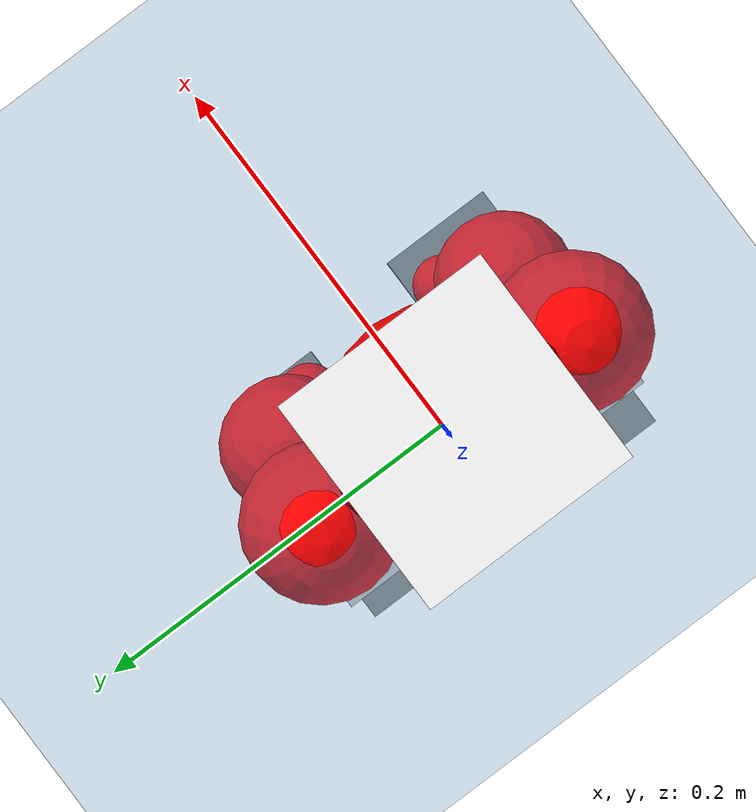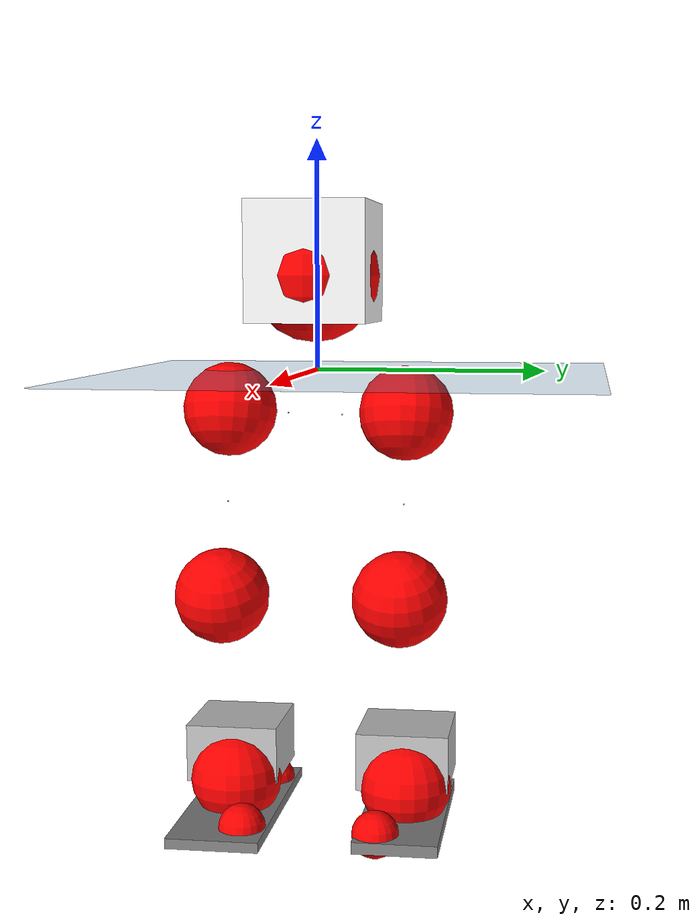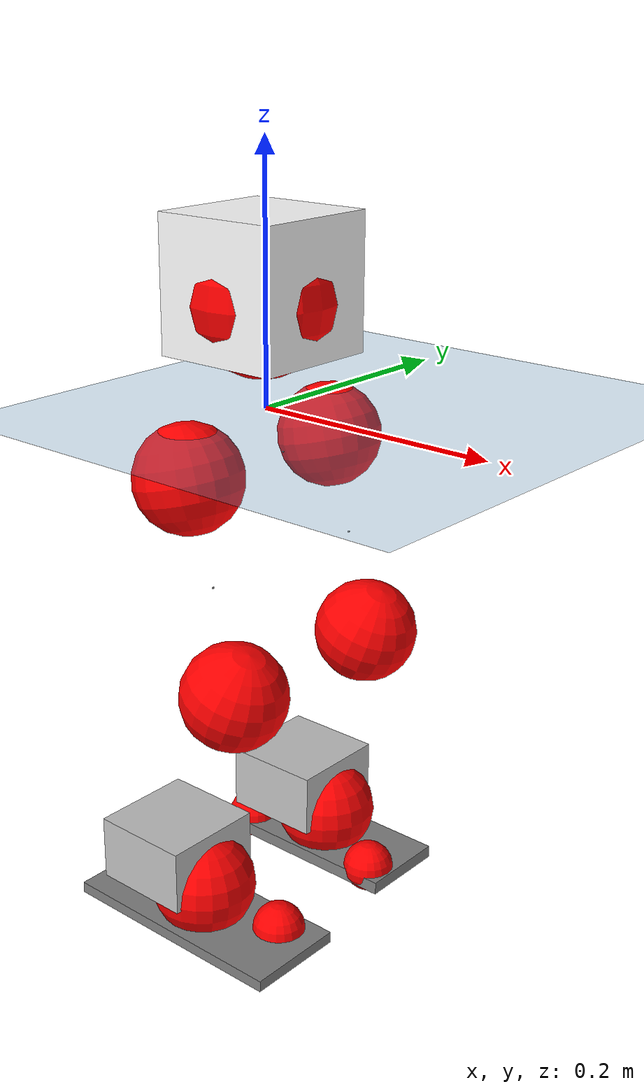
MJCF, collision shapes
<mujoco model="pi_12dof_release_v1">
  <compiler angle="radian" assetdir="assets" balanceinertia="true" inertiafromgeom="false"/>

  <option timestep="0.005" density="1.2" viscosity="2e-05"/>

  <size nkey="1"/>

  <visual>
    <quality shadowsize="8192"/>
    <map shadowclip="0.5"/>
  </visual>

  <default>
    <default class="/">
      <joint armature="0.01" damping="0.01" frictionloss="0.01"/>
      <geom contype="0" conaffinity="0" group="1" solref="-1000 -80"/>
      <site size="0.01 0.005 0.005" group="5"/>
      <general forcelimited="true" biastype="affine" gainprm="20" biasprm="0 -20 -0.5"/>
      <default class="foot">
        <geom size="0.0845 0.036 0.005" type="box" condim="6" group="4" priority="1" friction="0.9 0.2 0.2" solimp="0.015 1 0.005"/>
      </default>
      <default class="reward_collision_sphere">
        <geom group="5" rgba="1 0 0 1"/>
      </default>
    </default>
  </default>

  <asset>
    <texture type="skybox" colorspace="auto" name="//unnamed_texture_0" builtin="gradient" rgb1="0.95 0.95 0.95" rgb2="0.95 0.95 0.95" width="100" height="600"/>
    <texture type="2d" colorspace="auto" name="texplane" builtin="checker" rgb1="0.345 0.575 0.748" rgb2="0.345 0.575 0.748" markrgb="1 1 1" width="512" height="512"/>
    <material name="MatPlane" class="/" texture="texplane" texuniform="true" texrepeat="2 2" specular="0.9"/>
    <mesh name="baselink_1" class="/" file="baselink_1.STL"/>
    <mesh name="r_hip_pitch_link" class="/" file="r_hip_pitch_link.STL"/>
    <mesh name="r_hip_roll_link" class="/" file="r_hip_roll_link.STL"/>
    <mesh name="r_thigh_link" class="/" file="r_thigh_link.STL"/>
    <mesh name="r_calf_link" class="/" file="r_calf_link.STL"/>
    <mesh name="r_ankle_pitch_link" class="/" file="r_ankle_pitch_link.STL"/>
    <mesh name="r_ankle_roll_link" class="/" file="r_ankle_roll_link.STL"/>
    <mesh name="l_hip_pitch_link" class="/" file="l_hip_pitch_link.STL"/>
    <mesh name="l_hip_roll_link" class="/" file="l_hip_roll_link.STL"/>
    <mesh name="l_thigh_link" class="/" file="l_thigh_link.STL"/>
    <mesh name="l_calf_link" class="/" file="l_calf_link.STL"/>
    <mesh name="l_ankle_pitch_link" class="/" file="l_ankle_pitch_link.STL"/>
    <mesh name="l_ankle_roll_link" class="/" file="l_ankle_roll_link.STL"/>
  </asset>

  <worldbody>
    <geom name="floor" class="/" size="100 100 0.125" type="plane" group="0" material="MatPlane"/>
    <light name="toplight_shadow" class="/" pos="0 0 5" dir="0.0990148 0.0990148 -0.990148" type="directional" ambient="0.04 0.04 0.04" diffuse="0.55 0.55 0.55" specular="0.12 0.12 0.12"/>
    <light name="toplight_fill" class="/" pos="0 0 5" dir="0.0990148 0.0990148 -0.990148" type="directional" castshadow="false" ambient="0.04 0.04 0.04" diffuse="0.3 0.3 0.3" specular="0.08 0.08 0.08"/>
    <body name="trunk" pos="-0.000471007 -0.00254574 -0.00239209" quat="1 -4.57229e-05 -0.00097924 -1.13657e-05">
      <inertial pos="0.00230384 -0.00210042 0.0493504" quat="0.702485 0.0154489 0.0108763 0.711448" mass="2.56811" diaginertia="0.00840248 0.0076998 0.0108901"/>
      <joint name="//unnamed_joint_0" type="free"/>
      <geom name="//unnamed_geom_1" class="/" type="mesh" density="0" rgba="1 1 1 1" mesh="baselink_1"/>
      <geom name="//unnamed_geom_2" class="/" size="0.0524999 0.0524999 0.0524999" pos="0 0 0.0965427" type="box" rgba="1 1 1 1"/>
      <geom name="//unnamed_geom_3" class="reward_collision_sphere" size="0.0577499" pos="0 0 0.0844749"/>
      <site name="imu" class="/" pos="-0.00385223 0.01114 -0.00733441" size="0.0105"/>
      <camera name="track" class="/" pos="0 -1.94057 0" quat="0.707107 0.707107 0 0" mode="trackcom"/>
      <camera name="ego_camera" class="/" pos="0.0729692 0 0.217221" quat="-0.5 -0.5 0.5 0.5"/>
      <body name="r_hip_pitch_link" pos="-0.00241526 -0.0250696 -0.0365842" quat="0.99221 -6.05005e-05 -0.124574 -0.000257121">
        <inertial pos="0.00110778 -0.0570554 -0.00282891" quat="-0.0181181 0.707964 -0.0323378 0.705276" mass="0.438068" diaginertia="9.63127e-05 8.49381e-05 0.000224112"/>
        <joint name="r_hip_pitch_joint" class="/" pos="0 0 0" axis="-0.00923993 -0.99993 -0.0074064" stiffness="0.00602756" range="-1.75413 1.28711" armature="0.0103453" damping="0.00637062" frictionloss="0.0118104"/>
        <geom name="//unnamed_geom_4" class="/" type="mesh" density="0" rgba="0.75294 0.75294 0.75294 1" mesh="r_hip_pitch_link"/>
        <geom name="//unnamed_geom_5" class="/" size="0.000524999 0.000524999 0.000524999" type="box" rgba="0.75294 0.75294 0.75294 1"/>
        <body name="r_hip_roll_link" pos="0.000922268 -0.0528778 0.00261067" quat="1 4.44984e-05 3.29142e-05 -8.36157e-06">
          <inertial pos="-0.00135586 -0.000992087 -0.0721445" quat="0.708109 -0.0750988 -0.0825315 0.69723" mass="0.444456" diaginertia="0.000295465 0.000244308 0.000320252"/>
          <joint name="r_hip_roll_joint" class="/" pos="0 0 0" axis="-1 0.000887951 -0.000402711" stiffness="0.0092379" range="-0.157471 0.552536" armature="0.0098484" damping="0" frictionloss="0.0100438"/>
          <geom name="//unnamed_geom_6" class="/" type="mesh" density="0" rgba="0.75294 0.75294 0.75294 1" mesh="r_hip_roll_link"/>
          <geom name="//unnamed_geom_7" class="/" size="0.000524999 0.000524999 0.000524999" type="box" rgba="0.75294 0.75294 0.75294 1"/>
          <geom name="//unnamed_geom_8" class="reward_collision_sphere" size="0.0419999"/>
          <body name="r_thigh_link" pos="9.00086e-05 0.00190897 -0.0829793" quat="0.999999 0.000806523 0.00104241 -3.02405e-05">
            <inertial pos="0.00290719 0.00349306 -0.0596187" quat="0.740275 0.672283 0.000679971 -0.00526036" mass="0.133299" diaginertia="0.000106499 8.44126e-05 0.000143602"/>
            <joint name="r_thigh_joint" class="/" pos="0 0 0" axis="-0.00774656 0.00575384 -0.999953" stiffness="0.00429065" range="-0.300437 0.650378" armature="0.00964067" damping="0.0189023" frictionloss="0.0110307"/>
            <geom name="//unnamed_geom_9" class="/" type="mesh" density="0" rgba="0.75294 0.75294 0.75294 1" mesh="r_thigh_link"/>
            <geom name="//unnamed_geom_10" class="/" size="0.000524999 0.000524999 0.000524999" type="box" rgba="0.75294 0.75294 0.75294 1"/>
            <body name="r_calf_link" pos="0.000373398 -0.00143731 -0.0842825" quat="0.947616 0.00132252 0.31941 0.000365414">
              <inertial pos="0.00178246 0.000840384 -0.0843606" quat="0.999959 -0.00765048 -0.00180967 0.00453157" mass="0.960334" diaginertia="0.00317032 0.00307503 0.000445282"/>
              <joint name="r_calf_joint" class="/" pos="0 0 0" axis="0.00164286 -0.999984 -0.00539642" stiffness="0.00141372" range="-1.6319 0.617651" armature="0.0103357" damping="0.00951428" frictionloss="0.0104024"/>
              <geom name="//unnamed_geom_11" class="/" type="mesh" density="0" rgba="0.75294 0.75294 0.75294 1" mesh="r_calf_link"/>
              <geom name="//unnamed_geom_12" class="/" size="0.000524999 0.000524999 0.000524999" type="box" rgba="0.75294 0.75294 0.75294 1"/>
              <geom name="//unnamed_geom_13" class="reward_collision_sphere" size="0.0419999"/>
              <body name="r_ankle_pitch_link" pos="0.000151186 -0.000572447 -0.167596" quat="0.9801 -0.00014536 -0.198504 -0.000294621">
                <inertial pos="0.00216675 0.0036548 -0.00190794" quat="0.00350035 0.707167 -0.00263745 0.707033" mass="0.198608" diaginertia="0.000261152 0.000179421 0.000290635"/>
                <joint name="r_ankle_pitch_joint" class="/" pos="0 0 0" axis="-6.65186e-05 -1 9.20081e-05" range="-1.3371 0.544126" armature="0.010565" damping="0.0145012" frictionloss="0.00912698"/>
                <geom name="//unnamed_geom_14" class="/" type="mesh" density="0" rgba="0.75294 0.75294 0.75294 1" mesh="r_ankle_pitch_link"/>
                <geom name="//unnamed_geom_15" class="/" size="0.0409499 0.0419999 0.0262499" type="box" rgba="0.75294 0.75294 0.75294 1"/>
                <body name="r_ankle_roll_link" pos="0.0761332 0.0015361 -0.000208332" quat="1 -2.85883e-06 -7.21347e-05 -1.70905e-05">
                  <inertial pos="-0.0201486 0.000109809 -0.0190479" quat="0.559848 0.43149 0.434505 0.558204" mass="0.625186" diaginertia="0.00103023 0.000879784 0.000732855"/>
                  <joint name="r_ankle_roll_joint" class="/" pos="0 0 0" axis="-0.999987 0.00448396 0.00246219" range="-0.132649 0.115255" armature="0.010632" damping="0" frictionloss="0.0102911"/>
                  <geom name="//unnamed_geom_16" class="/" type="mesh" density="0" rgba="0.75294 0.75294 0.75294 1" mesh="r_ankle_roll_link"/>
                  <geom name="//unnamed_geom_17" class="/" type="mesh" rgba="0.75294 0.75294 0.75294 1" mesh="r_ankle_roll_link"/>
                  <geom name="right_foot" class="foot" size="0.0991623 0.0412725 0.00461736" pos="-0.0496191 0 -0.0530985"/>
                  <geom name="//unnamed_geom_19" class="reward_collision_sphere" size="0.0419999" pos="-0.0486462 0 -0.0241357"/>
                  <geom name="//unnamed_geom_20" class="reward_collision_sphere" size="0.021" pos="0.0145938 0.0194057 -0.0482714"/>
                  <geom name="//unnamed_geom_21" class="reward_collision_sphere" size="0.021" pos="-0.116751 0.0194057 -0.0482714"/>
                  <site name="right_foot" class="foot" pos="-0.0496191 0 -0.0530985" size="0.0105"/>
                </body>
              </body>
            </body>
          </body>
        </body>
      </body>
      <body name="l_hip_pitch_link" pos="-0.00123747 0.0240822 -0.0373581" quat="0.992158 3.23246e-05 -0.12499 0.000442814">
        <inertial pos="0.00128066 0.0510463 -0.000998725" quat="-0.0385281 0.706175 0.0301487 0.706345" mass="0.450519" diaginertia="0.000110748 9.19454e-05 0.000250425"/>
        <joint name="l_hip_pitch_joint" class="/" pos="0 0 0" axis="0.00232378 0.999991 -0.00357533" range="-1.19112 1.73342" armature="0.0116734" damping="0" frictionloss="0.0118348"/>
        <geom name="//unnamed_geom_22" class="/" type="mesh" density="0" rgba="0.75294 0.75294 0.75294 1" mesh="l_hip_pitch_link"/>
        <geom name="//unnamed_geom_23" class="/" size="0.000524999 0.000524999 0.000524999" type="box" rgba="0.75294 0.75294 0.75294 1"/>
        <body name="l_hip_roll_link" pos="-0.00109703 0.0569949 0.0020485" quat="1 9.91989e-05 0.000392592 -6.74006e-05">
          <inertial pos="-0.00137699 0.000258691 -0.0744676" quat="0.694893 -0.0717774 -0.0786653 0.711185" mass="0.439163" diaginertia="0.000295759 0.000231983 0.00033663"/>
          <joint name="l_hip_roll_joint" class="/" pos="0 0 0" axis="-0.999934 0.00995624 0.0057423" range="-0.536661 0.0674796" armature="0.0117044" damping="0.0110553" frictionloss="0.0119511"/>
          <geom name="//unnamed_geom_24" class="/" type="mesh" density="0" rgba="0.75294 0.75294 0.75294 1" mesh="l_hip_roll_link"/>
          <geom name="//unnamed_geom_25" class="/" size="0.000524999 0.000524999 0.000524999" type="box" rgba="0.75294 0.75294 0.75294 1"/>
          <geom name="//unnamed_geom_26" class="reward_collision_sphere" size="0.0419999"/>
          <body name="l_thigh_link" pos="0.00100387 0.000759147 -0.0811449" quat="1 9.80543e-05 0.000283181 0.000499436">
            <inertial pos="0.000399752 -0.00136494 -0.0545251" quat="0.674833 0.73797 -0.000642572 -0.00115993" mass="0.131555" diaginertia="0.000108618 8.07016e-05 0.000150493"/>
            <joint name="l_thigh_joint" class="/" pos="0 0 0" axis="0.00157237 0.00216815 -0.999996" range="-0.59997 0.301828" armature="0.00887232" damping="0.00889266" frictionloss="0.0106462"/>
            <geom name="//unnamed_geom_27" class="/" type="mesh" density="0" rgba="0.75294 0.75294 0.75294 1" mesh="l_thigh_link"/>
            <geom name="//unnamed_geom_28" class="/" size="0.000524999 0.000524999 0.000524999" type="box" rgba="0.75294 0.75294 0.75294 1"/>
            <body name="l_calf_link" pos="-0.000386264 -0.00121945 -0.0831928" quat="0.947501 0.000883652 0.319752 0.000771141">
              <inertial pos="0.000407563 0.00553621 -0.0842058" quat="0.999992 0.00393491 0.000593598 -0.00072772" mass="0.945162" diaginertia="0.00319804 0.00313303 0.000435954"/>
              <joint name="l_calf_joint" class="/" pos="0 0 0" axis="0.000252689 0.999999 -0.00150526" range="-0.656077 1.6481" armature="0.0104583" damping="0.0136827" frictionloss="0.0106782"/>
              <geom name="//unnamed_geom_29" class="/" type="mesh" density="0" rgba="0.75294 0.75294 0.75294 1" mesh="l_calf_link"/>
              <geom name="//unnamed_geom_30" class="/" size="0.000524999 0.000524999 0.000524999" type="box" rgba="0.75294 0.75294 0.75294 1"/>
              <geom name="//unnamed_geom_31" class="reward_collision_sphere" size="0.0419999"/>
              <body name="l_ankle_pitch_link" pos="0.000215185 -0.00146357 -0.171117" quat="0.980287 -0.000182037 -0.197577 0.000744416">
                <inertial pos="0.00492564 -0.0036451 -0.000793125" quat="-0.00207326 0.706845 0.00425916 0.707352" mass="0.191077" diaginertia="0.000252352 0.000184623 0.000293718"/>
                <joint name="l_ankle_pitch_joint" class="/" pos="0 0 0" axis="0.000617483 0.999999 -0.00121504" range="-0.517414 1.29641" armature="0.0102858" damping="0.0154552" frictionloss="0.0118433"/>
                <geom name="//unnamed_geom_32" class="/" type="mesh" density="0" rgba="0.75294 0.75294 0.75294 1" mesh="l_ankle_pitch_link"/>
                <geom name="//unnamed_geom_33" class="/" size="0.0409499 0.0419999 0.0262499" type="box" rgba="0.75294 0.75294 0.75294 1"/>
                <body name="l_ankle_roll_link" pos="0.074265 0.00189994 0.000238729" quat="1 0.000123009 3.79625e-05 -0.000276651">
                  <inertial pos="-0.0236652 0.000984998 -0.0146372" quat="0.554021 0.440861 0.434257 0.556887" mass="0.597687" diaginertia="0.00101834 0.000857448 0.00074697"/>
                  <joint name="l_ankle_roll_joint" class="/" pos="0 0 0" axis="-0.999947 0.00362526 -0.00967398" range="-0.18539 0.148887" armature="0.00996129" damping="0.0239993" frictionloss="0.0111464"/>
                  <geom name="//unnamed_geom_34" class="/" type="mesh" density="0" rgba="0.75294 0.75294 0.75294 1" mesh="l_ankle_roll_link"/>
                  <geom name="//unnamed_geom_35" class="/" type="mesh" rgba="0.75294 0.75294 0.75294 1" mesh="l_ankle_roll_link"/>
                  <geom name="left_foot" class="foot" size="0.0864329 0.0376406 0.00531538" pos="-0.0496191 0 -0.0530985"/>
                  <geom name="//unnamed_geom_37" class="reward_collision_sphere" size="0.0419999" pos="-0.0486462 0 -0.0241357"/>
                  <geom name="//unnamed_geom_38" class="reward_collision_sphere" size="0.021" pos="0.0145938 -0.0194057 -0.0482714"/>
                  <geom name="//unnamed_geom_39" class="reward_collision_sphere" size="0.021" pos="-0.116751 -0.0194057 -0.0482714"/>
                  <site name="left_foot" class="foot" pos="-0.0496191 0 -0.0530985" size="0.0105"/>
                </body>
              </body>
            </body>
          </body>
        </body>
      </body>
    </body>
  </worldbody>

  <contact>
    <pair class="/" geom1="floor" geom2="right_foot" name="//unnamed_contact_1"/>
    <pair class="/" geom1="floor" geom2="left_foot" name="//unnamed_contact_0"/>
  </contact>

  <actuator>
    <general name="r_hip_pitch_joint" class="/" joint="r_hip_pitch_joint" forcerange="-21.4742 21.4742" gainprm="20.982" biasprm="0 -20.982 -0.486534"/>
    <general name="r_hip_roll_joint" class="/" joint="r_hip_roll_joint" forcerange="-21.9584 21.9584" gainprm="20.982" biasprm="0 -20.982 -0.486534"/>
    <general name="r_thigh_joint" class="/" joint="r_thigh_joint" forcerange="-21.722 21.722" gainprm="20.982" biasprm="0 -20.982 -0.486534"/>
    <general name="r_calf_joint" class="/" joint="r_calf_joint" forcerange="-21.7658 21.7658" gainprm="20.982" biasprm="0 -20.982 -0.486534"/>
    <general name="r_ankle_pitch_joint" class="/" joint="r_ankle_pitch_joint" forcerange="-22.4951 22.4951" gainprm="20.982" biasprm="0 -20.982 -0.486534"/>
    <general name="r_ankle_roll_joint" class="/" joint="r_ankle_roll_joint" forcerange="-21.6543 21.6543" gainprm="20.982" biasprm="0 -20.982 -0.486534"/>
    <general name="l_hip_pitch_joint" class="/" joint="l_hip_pitch_joint" forcerange="-22.8098 22.8098" gainprm="20.982" biasprm="0 -20.982 -0.486534"/>
    <general name="l_hip_roll_joint" class="/" joint="l_hip_roll_joint" forcerange="-19.7759 19.7759" gainprm="20.982" biasprm="0 -20.982 -0.486534"/>
    <general name="l_thigh_joint" class="/" joint="l_thigh_joint" forcerange="-22.1228 22.1228" gainprm="20.982" biasprm="0 -20.982 -0.486534"/>
    <general name="l_calf_joint" class="/" joint="l_calf_joint" forcerange="-21.8427 21.8427" gainprm="20.982" biasprm="0 -20.982 -0.486534"/>
    <general name="l_ankle_pitch_joint" class="/" joint="l_ankle_pitch_joint" forcerange="-22.1255 22.1255" gainprm="20.982" biasprm="0 -20.982 -0.486534"/>
    <general name="l_ankle_roll_joint" class="/" joint="l_ankle_roll_joint" forcerange="-20.1191 20.1191" gainprm="20.982" biasprm="0 -20.982 -0.486534"/>
  </actuator>

  <sensor>
    <gyro site="imu" name="imu_angular_velocity"/>
    <velocimeter site="imu" name="imu_linear_velocity"/>
    <framelinvel objtype="site" objname="left_foot" name="left_foot_global_linear_velocity"/>
    <framelinvel objtype="site" objname="right_foot" name="right_foot_global_linear_velocity"/>
  </sensor>

  <keyframe>
    <key name="home" qpos="0 0 0.291 1 0 0 0 0.4 0 0 -0.8 0.4 0 -0.4 0 0 0.8 -0.4 0"/>
  </keyframe>
</mujoco>
